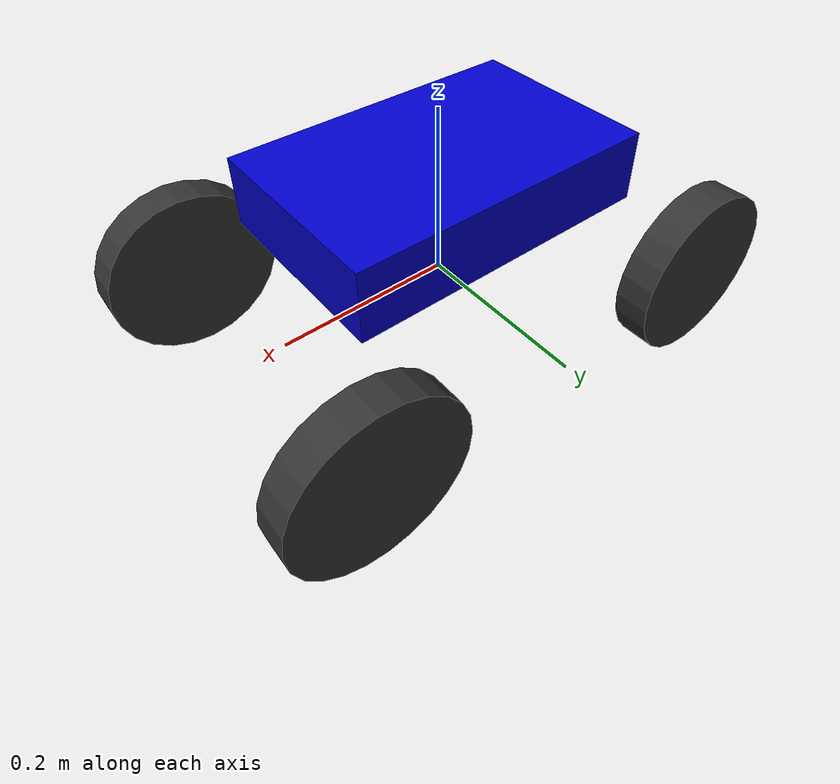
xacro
<?xml version="1.0"?>
<robot xmlns:xacro="http://www.ros.org/wiki/xacro" name="md_4wd_robot">

  <!-- ========================================================================
       Arguments (YAML에서 전달받는 파라미터)
       ======================================================================== -->
  <!-- 시리얼 통신 (2개의 포트) -->
  <xacro:arg name="port_front" default="/dev/ttyUSB0"/>
  <xacro:arg name="port_rear" default="/dev/ttyUSB1"/>
  <xacro:arg name="baudrate" default="19200"/>

  <!-- 모터 드라이버 ID -->
  <xacro:arg name="front_driver_id" default="1"/>
  <xacro:arg name="rear_driver_id" default="2"/>
  <xacro:arg name="id_mdui" default="184"/>
  <xacro:arg name="id_mdt" default="183"/>

  <!-- 로봇 기구학 (robot_description/mobile_base.xacro 기준) -->
  <xacro:arg name="wheel_radius" default="0.098"/>
  <xacro:arg name="wheel_separation" default="0.32"/>
  <xacro:arg name="wheelbase" default="0.44"/>

  <!-- 모터/엔코더 -->
  <xacro:arg name="gear_ratio" default="15"/>
  <xacro:arg name="poles" default="10"/>

  <!-- Properties -->
  <xacro:property name="wheel_radius" value="$(arg wheel_radius)"/>
  <xacro:property name="wheel_separation" value="$(arg wheel_separation)"/>
  <xacro:property name="wheelbase" value="$(arg wheelbase)"/>
  <xacro:property name="wheel_width" value="0.04"/>

  <!-- Materials -->
  <material name="blue"><color rgba="0.0 0.0 0.8 1.0"/></material>
  <material name="dark_gray"><color rgba="0.2 0.2 0.2 1.0"/></material>

  <!-- Wheel Macro -->
  <xacro:macro name="wheel" params="prefix x_pos y_pos">
    <link name="${prefix}_wheel_link">
      <visual>
        <origin xyz="0 0 0" rpy="${pi/2} 0 0"/>
        <geometry><cylinder radius="${wheel_radius}" length="${wheel_width}"/></geometry>
        <material name="dark_gray"/>
      </visual>
      <collision>
        <origin xyz="0 0 0" rpy="${pi/2} 0 0"/>
        <geometry><cylinder radius="${wheel_radius}" length="${wheel_width}"/></geometry>
      </collision>
      <inertial>
        <mass value="0.5"/>
        <origin xyz="0 0 0" rpy="${pi/2} 0 0"/>
        <inertia ixx="0.00052" ixy="0" ixz="0" iyy="0.00052" iyz="0" izz="0.00063"/>
      </inertial>
    </link>
    <joint name="${prefix}_wheel_joint" type="continuous">
      <parent link="base_link"/>
      <child link="${prefix}_wheel_link"/>
      <origin xyz="${x_pos} ${y_pos} 0" rpy="0 0 0"/>
      <axis xyz="0 1 0"/>
      <dynamics damping="0.1" friction="0.1"/>
    </joint>
  </xacro:macro>

  <!-- Base Link -->
  <link name="base_link">
    <visual>
      <origin xyz="0 0 ${wheel_radius + 0.02}" rpy="0 0 0"/>
      <geometry><box size="${wheelbase * 0.8} ${wheel_separation * 0.7} 0.08"/></geometry>
      <material name="blue"/>
    </visual>
    <collision>
      <origin xyz="0 0 ${wheel_radius + 0.02}" rpy="0 0 0"/>
      <geometry><box size="${wheelbase * 0.8} ${wheel_separation * 0.7} 0.08"/></geometry>
    </collision>
    <inertial>
      <mass value="5.0"/>
      <origin xyz="0 0 ${wheel_radius + 0.02}" rpy="0 0 0"/>
      <inertia ixx="0.05" ixy="0" ixz="0" iyy="0.05" iyz="0" izz="0.1"/>
    </inertial>
  </link>

  <!-- Footprint -->
  <link name="base_footprint"/>
  <joint name="base_footprint_joint" type="fixed">
    <parent link="base_footprint"/>
    <child link="base_link"/>
    <origin xyz="0 0 0" rpy="0 0 0"/>
  </joint>

  <!-- 4 Wheels -->
  <xacro:wheel prefix="front_left" x_pos="${wheelbase/2}" y_pos="${wheel_separation/2 + wheel_width/2}"/>
  <xacro:wheel prefix="front_right" x_pos="${wheelbase/2}" y_pos="${-wheel_separation/2 - wheel_width/2}"/>
  <xacro:wheel prefix="rear_left" x_pos="${-wheelbase/2}" y_pos="${wheel_separation/2 + wheel_width/2}"/>
  <xacro:wheel prefix="rear_right" x_pos="${-wheelbase/2}" y_pos="${-wheel_separation/2 - wheel_width/2}"/>

  <!-- ros2_control Hardware Interface (Dual Serial Port) -->
  <ros2_control name="md_4wd_hardware_interface" type="system">
    <hardware>
      <plugin>md_hardware/MD4WDHardware</plugin>
      <!-- 시리얼 통신 파라미터 (2개 포트) -->
      <param name="port_front">$(arg port_front)</param>
      <param name="port_rear">$(arg port_rear)</param>
      <param name="baudrate">$(arg baudrate)</param>
      <!-- 모터 드라이버 ID -->
      <param name="front_driver_id">$(arg front_driver_id)</param>
      <param name="rear_driver_id">$(arg rear_driver_id)</param>
      <param name="id_mdui">$(arg id_mdui)</param>
      <param name="id_mdt">$(arg id_mdt)</param>
      <!-- 로봇 기구학 파라미터 -->
      <param name="wheel_radius">$(arg wheel_radius)</param>
      <param name="wheel_separation">$(arg wheel_separation)</param>
      <param name="wheelbase">$(arg wheelbase)</param>
      <param name="gear_ratio">$(arg gear_ratio)</param>
      <param name="poles">$(arg poles)</param>
    </hardware>

    <!-- [0] Front Left - Front Driver CH1 -->
    <joint name="front_left_wheel_joint">
      <command_interface name="velocity"><param name="min">-50.0</param><param name="max">50.0</param></command_interface>
      <state_interface name="position"/><state_interface name="velocity"/>
    </joint>
    <!-- [1] Front Right - Front Driver CH2 -->
    <joint name="front_right_wheel_joint">
      <command_interface name="velocity"><param name="min">-50.0</param><param name="max">50.0</param></command_interface>
      <state_interface name="position"/><state_interface name="velocity"/>
    </joint>
    <!-- [2] Rear Left - Rear Driver CH1 -->
    <joint name="rear_left_wheel_joint">
      <command_interface name="velocity"><param name="min">-50.0</param><param name="max">50.0</param></command_interface>
      <state_interface name="position"/><state_interface name="velocity"/>
    </joint>
    <!-- [3] Rear Right - Rear Driver CH2 -->
    <joint name="rear_right_wheel_joint">
      <command_interface name="velocity"><param name="min">-50.0</param><param name="max">50.0</param></command_interface>
      <state_interface name="position"/><state_interface name="velocity"/>
    </joint>
  </ros2_control>

</robot>
